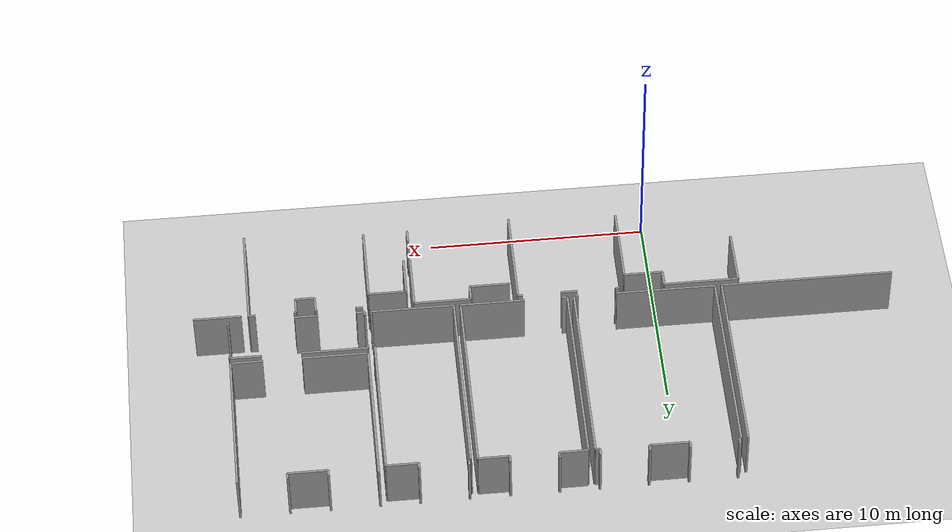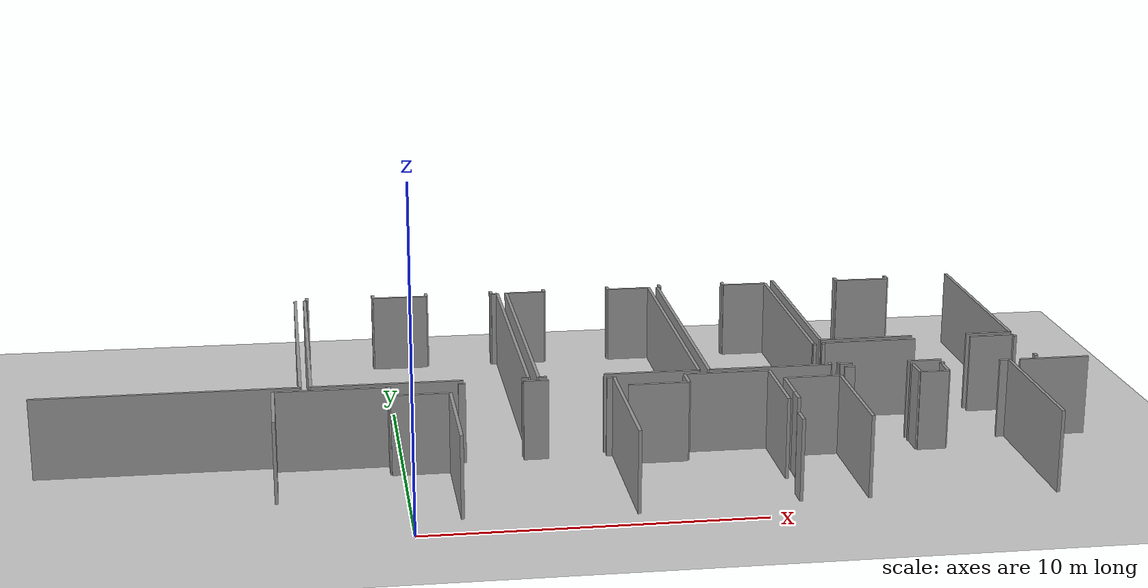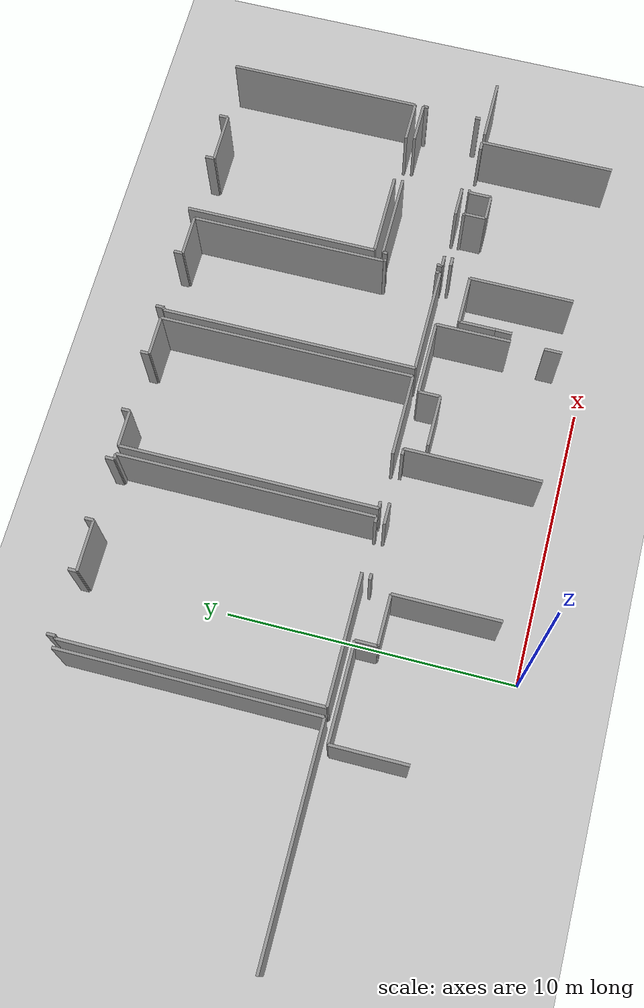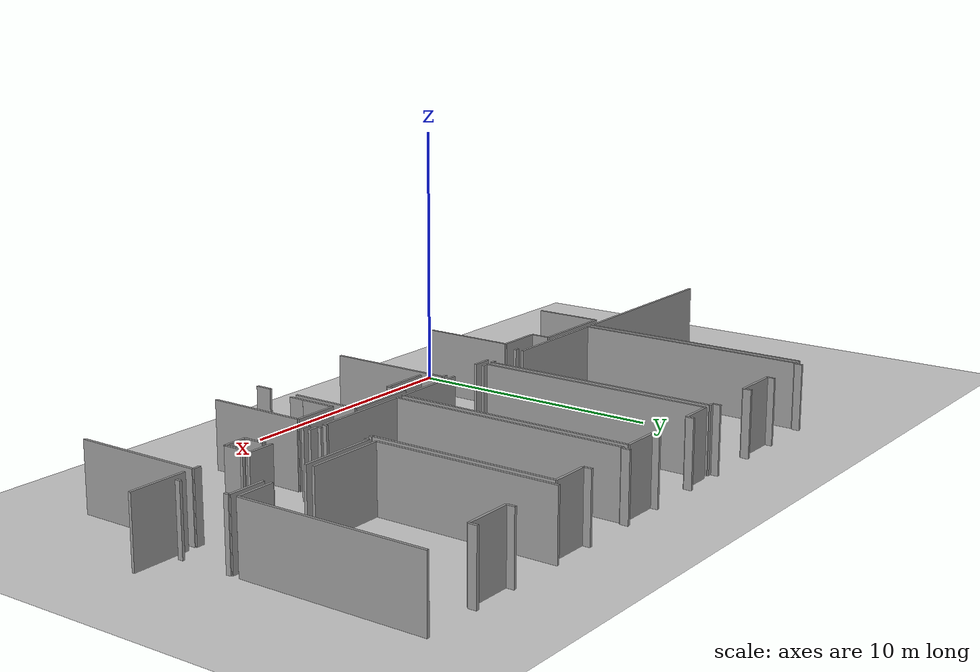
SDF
<sdf version="1.6">
 <world name="default">
  <model name="ground_plane">
   <static>1</static>
   <link name="link">
    <collision name="collision">
     <geometry><plane><normal>0 0 1</normal><size>100 100</size></plane></geometry>
     <surface><friction><ode><mu>100</mu><mu2>50</mu2></ode></friction></surface>
    </collision>
    <visual name="visual">
     <cast_shadows>0</cast_shadows>
     <geometry><plane><normal>0 0 1</normal><size>100 100</size></plane></geometry>
     <material>
      <script><uri>file://media/materials/scripts/gazebo.material</uri><name>Gazebo/Grey</name></script>
     </material>
    </visual>
   </link>
  </model>
  <model name="0510032270_A_40_1_104">
   <static>1</static>
   <link name="Wall_201">
    <collision name="Wall_201_Collision">
     <geometry><box><size>8.98941509842 0.1 2.5</size></box></geometry>
     <pose>4.49470754921 0 1.25 0 0 0</pose>
    </collision>
    <visual name="Wall_201_Visual">
     <pose>4.49470754921 0 1.25 0 0 0</pose>
     <geometry><box><size>8.98941509842 0.1 2.5</size></box></geometry>
     <material>
      <script><uri>file://media/materials/scripts/gazebo.material</uri><name>Gazebo/Grey</name></script>
      <ambient>1 1 1 1</ambient>
     </material>
    </visual>
    <pose>44.8310609045 -0.415898954217 0 0 0 -1.57079632679</pose>
   </link>
   <link name="Wall_202">
    <collision name="Wall_202_Collision">
     <geometry><box><size>7.89636199601 0.1 2.5</size></box></geometry>
     <pose>3.94818099801 0 1.25 0 0 0</pose>
    </collision>
    <visual name="Wall_202_Visual">
     <pose>3.94818099801 0 1.25 0 0 0</pose>
     <geometry><box><size>7.89636199601 0.1 2.5</size></box></geometry>
     <material>
      <script><uri>file://media/materials/scripts/gazebo.material</uri><name>Gazebo/Grey</name></script>
      <ambient>1 1 1 1</ambient>
     </material>
    </visual>
    <pose>44.8310609045 -9.40531405263 0 0 0 3.14159265359</pose>
   </link>
   <link name="Wall_236">
    <collision name="Wall_236_Collision">
     <geometry><box><size>2.62525890441 0.1 2.5</size></box></geometry>
     <pose>1.3126294522 0 1.25 0 0 0</pose>
    </collision>
    <visual name="Wall_236_Visual">
     <pose>1.3126294522 0 1.25 0 0 0</pose>
     <geometry><box><size>2.62525890441 0.1 2.5</size></box></geometry>
     <material>
      <script><uri>file://media/materials/scripts/gazebo.material</uri><name>Gazebo/Grey</name></script>
      <ambient>1 1 1 1</ambient>
     </material>
    </visual>
    <pose>44.0287431541 -12.347611726 0 0 0 1.57079632679</pose>
   </link>
   <link name="Wall_237">
    <collision name="Wall_237_Collision">
     <geometry><box><size>3.41042225244 0.1 2.5</size></box></geometry>
     <pose>1.70521112622 0 1.25 0 0 0</pose>
    </collision>
    <visual name="Wall_237_Visual">
     <pose>1.70521112622 0 1.25 0 0 0</pose>
     <geometry><box><size>3.41042225244 0.1 2.5</size></box></geometry>
     <material>
      <script><uri>file://media/materials/scripts/gazebo.material</uri><name>Gazebo/Grey</name></script>
      <ambient>1 1 1 1</ambient>
     </material>
    </visual>
    <pose>44.0287431541 -9.72235282158 0 0 0 0.0</pose>
   </link>
   <link name="Wall_238">
    <collision name="Wall_238_Collision">
     <geometry><box><size>0.75593732925 0.1 2.5</size></box></geometry>
     <pose>0.377968664625 0 1.25 0 0 0</pose>
    </collision>
    <visual name="Wall_238_Visual">
     <pose>0.377968664625 0 1.25 0 0 0</pose>
     <geometry><box><size>0.75593732925 0.1 2.5</size></box></geometry>
     <material>
      <script><uri>file://media/materials/scripts/gazebo.material</uri><name>Gazebo/Grey</name></script>
      <ambient>1 1 1 1</ambient>
     </material>
    </visual>
    <pose>47.4391654066 -9.72235282158 0 0 0 -1.57079632679</pose>
   </link>
   <link name="Wall_239">
    <collision name="Wall_239_Collision">
     <geometry><box><size>1.76664930048 0.1 2.5</size></box></geometry>
     <pose>0.883324650241 0 1.25 0 0 0</pose>
    </collision>
    <visual name="Wall_239_Visual">
     <pose>0.883324650241 0 1.25 0 0 0</pose>
     <geometry><box><size>1.76664930048 0.1 2.5</size></box></geometry>
     <material>
      <script><uri>file://media/materials/scripts/gazebo.material</uri><name>Gazebo/Grey</name></script>
      <ambient>1 1 1 1</ambient>
     </material>
    </visual>
    <pose>47.4391654066 -10.4782901508 0 0 0 0.0</pose>
   </link>
   <link name="Wall_240">
    <collision name="Wall_240_Collision">
     <geometry><box><size>3.69899742049 0.1 2.5</size></box></geometry>
     <pose>1.84949871024 0 1.25 0 0 0</pose>
    </collision>
    <visual name="Wall_240_Visual">
     <pose>1.84949871024 0 1.25 0 0 0</pose>
     <geometry><box><size>3.69899742049 0.1 2.5</size></box></geometry>
     <material>
      <script><uri>file://media/materials/scripts/gazebo.material</uri><name>Gazebo/Grey</name></script>
      <ambient>1 1 1 1</ambient>
     </material>
    </visual>
    <pose>49.205814707 -10.4782901508 0 0 0 -1.57079632679</pose>
   </link>
   <link name="Wall_425">
    <collision name="Wall_425_Collision">
     <geometry><box><size>8.99843704334 0.1 2.5</size></box></geometry>
     <pose>4.49921852167 0 1.25 0 0 0</pose>
    </collision>
    <visual name="Wall_425_Visual">
     <pose>4.49921852167 0 1.25 0 0 0</pose>
     <geometry><box><size>8.99843704334 0.1 2.5</size></box></geometry>
     <material>
      <script><uri>file://media/materials/scripts/gazebo.material</uri><name>Gazebo/Grey</name></script>
      <ambient>1 1 1 1</ambient>
     </material>
    </visual>
    <pose>45.1407296339 -9.40086661499 0 0 0 1.57079632679</pose>
   </link>
   <link name="Wall_426">
    <collision name="Wall_426_Collision">
     <geometry><box><size>0.0828494097615 0.1 2.5</size></box></geometry>
     <pose>0.0414247048807 0 1.25 0 0 0</pose>
    </collision>
    <visual name="Wall_426_Visual">
     <pose>0.0414247048807 0 1.25 0 0 0</pose>
     <geometry><box><size>0.0828494097615 0.1 2.5</size></box></geometry>
     <material>
      <script><uri>file://media/materials/scripts/gazebo.material</uri><name>Gazebo/Grey</name></script>
      <ambient>1 1 1 1</ambient>
     </material>
    </visual>
    <pose>45.1407296339 -0.402429571648 0 0 0 0.0</pose>
   </link>
   <link name="Wall_427">
    <collision name="Wall_427_Collision">
     <geometry><box><size>0.2906082824 0.1 2.5</size></box></geometry>
     <pose>0.1453041412 0 1.25 0 0 0</pose>
    </collision>
    <visual name="Wall_427_Visual">
     <pose>0.1453041412 0 1.25 0 0 0</pose>
     <geometry><box><size>0.2906082824 0.1 2.5</size></box></geometry>
     <material>
      <script><uri>file://media/materials/scripts/gazebo.material</uri><name>Gazebo/Grey</name></script>
      <ambient>1 1 1 1</ambient>
     </material>
    </visual>
    <pose>45.2235790437 -0.402429571648 0 0 0 1.57079632679</pose>
   </link>
   <link name="Wall_428">
    <collision name="Wall_428_Collision">
     <geometry><box><size>0.297978321918 0.1 2.5</size></box></geometry>
     <pose>0.148989160959 0 1.25 0 0 0</pose>
    </collision>
    <visual name="Wall_428_Visual">
     <pose>0.148989160959 0 1.25 0 0 0</pose>
     <geometry><box><size>0.297978321918 0.1 2.5</size></box></geometry>
     <material>
      <script><uri>file://media/materials/scripts/gazebo.material</uri><name>Gazebo/Grey</name></script>
      <ambient>1 1 1 1</ambient>
     </material>
    </visual>
    <pose>47.4335743421 -0.111821289249 0 0 0 -1.57079632679</pose>
   </link>
   <link name="Wall_429">
    <collision name="Wall_429_Collision">
     <geometry><box><size>1.79130081198 0.1 2.5</size></box></geometry>
     <pose>0.895650405988 0 1.25 0 0 0</pose>
    </collision>
    <visual name="Wall_429_Visual">
     <pose>0.895650405988 0 1.25 0 0 0</pose>
     <geometry><box><size>1.79130081198 0.1 2.5</size></box></geometry>
     <material>
      <script><uri>file://media/materials/scripts/gazebo.material</uri><name>Gazebo/Grey</name></script>
      <ambient>1 1 1 1</ambient>
     </material>
    </visual>
    <pose>47.4335743421 -0.409799611167 0 0 0 0.0</pose>
   </link>
   <link name="Wall_430">
    <collision name="Wall_430_Collision">
     <geometry><box><size>0.305729570378 0.1 2.5</size></box></geometry>
     <pose>0.152864785189 0 1.25 0 0 0</pose>
    </collision>
    <visual name="Wall_430_Visual">
     <pose>0.152864785189 0 1.25 0 0 0</pose>
     <geometry><box><size>0.305729570378 0.1 2.5</size></box></geometry>
     <material>
      <script><uri>file://media/materials/scripts/gazebo.material</uri><name>Gazebo/Grey</name></script>
      <ambient>1 1 1 1</ambient>
     </material>
    </visual>
    <pose>49.2248751541 -0.409799611167 0 0 0 1.57079632679</pose>
   </link>
   <link name="Wall_431">
    <collision name="Wall_431_Collision">
     <geometry><box><size>0.313480818837 0.1 2.5</size></box></geometry>
     <pose>0.156740409418 0 1.25 0 0 0</pose>
    </collision>
    <visual name="Wall_431_Visual">
     <pose>0.156740409418 0 1.25 0 0 0</pose>
     <geometry><box><size>0.313480818837 0.1 2.5</size></box></geometry>
     <material>
      <script><uri>file://media/materials/scripts/gazebo.material</uri><name>Gazebo/Grey</name></script>
      <ambient>1 1 1 1</ambient>
     </material>
    </visual>
    <pose>51.4352516614 -0.104070040789 0 0 0 -1.57079632679</pose>
   </link>
   <link name="Wall_432">
    <collision name="Wall_432_Collision">
     <geometry><box><size>0.203438504644 0.1 2.5</size></box></geometry>
     <pose>0.101719252322 0 1.25 0 0 0</pose>
    </collision>
    <visual name="Wall_432_Visual">
     <pose>0.101719252322 0 1.25 0 0 0</pose>
     <geometry><box><size>0.203438504644 0.1 2.5</size></box></geometry>
     <material>
      <script><uri>file://media/materials/scripts/gazebo.material</uri><name>Gazebo/Grey</name></script>
      <ambient>1 1 1 1</ambient>
     </material>
    </visual>
    <pose>51.4352516614 -0.417550859626 0 0 0 0.0</pose>
   </link>
   <link name="Wall_433">
    <collision name="Wall_433_Collision">
     <geometry><box><size>8.98128264102 0.1 2.5</size></box></geometry>
     <pose>4.49064132051 0 1.25 0 0 0</pose>
    </collision>
    <visual name="Wall_433_Visual">
     <pose>4.49064132051 0 1.25 0 0 0</pose>
     <geometry><box><size>8.98128264102 0.1 2.5</size></box></geometry>
     <material>
      <script><uri>file://media/materials/scripts/gazebo.material</uri><name>Gazebo/Grey</name></script>
      <ambient>1 1 1 1</ambient>
     </material>
    </visual>
    <pose>51.6386901661 -0.417550859626 0 0 0 -1.57079632679</pose>
   </link>
   <link name="Wall_434">
    <collision name="Wall_434_Collision">
     <geometry><box><size>0.205217479701 0.1 2.5</size></box></geometry>
     <pose>0.10260873985 0 1.25 0 0 0</pose>
    </collision>
    <visual name="Wall_434_Visual">
     <pose>0.10260873985 0 1.25 0 0 0</pose>
     <geometry><box><size>0.205217479701 0.1 2.5</size></box></geometry>
     <material>
      <script><uri>file://media/materials/scripts/gazebo.material</uri><name>Gazebo/Grey</name></script>
      <ambient>1 1 1 1</ambient>
     </material>
    </visual>
    <pose>51.6386901661 -9.39883350064 0 0 0 3.14159265359</pose>
   </link>
   <link name="Wall_435">
    <collision name="Wall_435_Collision">
     <geometry><box><size>4.53613270971 0.1 2.5</size></box></geometry>
     <pose>2.26806635486 0 1.25 0 0 0</pose>
    </collision>
    <visual name="Wall_435_Visual">
     <pose>2.26806635486 0 1.25 0 0 0</pose>
     <geometry><box><size>4.53613270971 0.1 2.5</size></box></geometry>
     <material>
      <script><uri>file://media/materials/scripts/gazebo.material</uri><name>Gazebo/Grey</name></script>
      <ambient>1 1 1 1</ambient>
     </material>
    </visual>
    <pose>49.676861888 -9.39883350064 0 0 0 -3.14114444924</pose>
   </link>
   <link name="Wall_436">
    <collision name="Wall_436_Collision">
     <geometry><box><size>9.00008894875 0.1 2.5</size></box></geometry>
     <pose>4.50004447438 0 1.25 0 0 0</pose>
    </collision>
    <visual name="Wall_436_Visual">
     <pose>4.50004447438 0 1.25 0 0 0</pose>
     <geometry><box><size>9.00008894875 0.1 2.5</size></box></geometry>
     <material>
      <script><uri>file://media/materials/scripts/gazebo.material</uri><name>Gazebo/Grey</name></script>
      <ambient>1 1 1 1</ambient>
     </material>
    </visual>
    <pose>51.9420054132 -9.4025185204 0 0 0 1.57079632679</pose>
   </link>
   <link name="Wall_437">
    <collision name="Wall_437_Collision">
     <geometry><box><size>1.29509384093 0.1 2.5</size></box></geometry>
     <pose>0.647546920467 0 1.25 0 0 0</pose>
    </collision>
    <visual name="Wall_437_Visual">
     <pose>0.647546920467 0 1.25 0 0 0</pose>
     <geometry><box><size>1.29509384093 0.1 2.5</size></box></geometry>
     <material>
      <script><uri>file://media/materials/scripts/gazebo.material</uri><name>Gazebo/Grey</name></script>
      <ambient>1 1 1 1</ambient>
     </material>
    </visual>
    <pose>51.9420054132 -0.402429571648 0 0 0 0.0</pose>
   </link>
   <link name="Wall_438">
    <collision name="Wall_438_Collision">
     <geometry><box><size>0.2906082824 0.1 2.5</size></box></geometry>
     <pose>0.1453041412 0 1.25 0 0 0</pose>
    </collision>
    <visual name="Wall_438_Visual">
     <pose>0.1453041412 0 1.25 0 0 0</pose>
     <geometry><box><size>0.2906082824 0.1 2.5</size></box></geometry>
     <material>
      <script><uri>file://media/materials/scripts/gazebo.material</uri><name>Gazebo/Grey</name></script>
      <ambient>1 1 1 1</ambient>
     </material>
    </visual>
    <pose>53.2370992541 -0.402429571648 0 0 0 1.57079632679</pose>
   </link>
   <link name="Wall_439">
    <collision name="Wall_439_Collision">
     <geometry><box><size>0.304077664968 0.1 2.5</size></box></geometry>
     <pose>0.152038832484 0 1.25 0 0 0</pose>
    </collision>
    <visual name="Wall_439_Visual">
     <pose>0.152038832484 0 1.25 0 0 0</pose>
     <geometry><box><size>0.304077664968 0.1 2.5</size></box></geometry>
     <material>
      <script><uri>file://media/materials/scripts/gazebo.material</uri><name>Gazebo/Grey</name></script>
      <ambient>1 1 1 1</ambient>
     </material>
    </visual>
    <pose>55.4350229361 -0.111821289249 0 0 0 -1.57079632679</pose>
   </link>
   <link name="Wall_440">
    <collision name="Wall_440_Collision">
     <geometry><box><size>1.410218941 0.1 2.5</size></box></geometry>
     <pose>0.705109470501 0 1.25 0 0 0</pose>
    </collision>
    <visual name="Wall_440_Visual">
     <pose>0.705109470501 0 1.25 0 0 0</pose>
     <geometry><box><size>1.410218941 0.1 2.5</size></box></geometry>
     <material>
      <script><uri>file://media/materials/scripts/gazebo.material</uri><name>Gazebo/Grey</name></script>
      <ambient>1 1 1 1</ambient>
     </material>
    </visual>
    <pose>55.4350229361 -0.415898954217 0 0 0 0.0</pose>
   </link>
   <link name="Wall_441">
    <collision name="Wall_441_Collision">
     <geometry><box><size>8.97810589984 0.1 2.5</size></box></geometry>
     <pose>4.48905294992 0 1.25 0 0 0</pose>
    </collision>
    <visual name="Wall_441_Visual">
     <pose>4.48905294992 0 1.25 0 0 0</pose>
     <geometry><box><size>8.97810589984 0.1 2.5</size></box></geometry>
     <material>
      <script><uri>file://media/materials/scripts/gazebo.material</uri><name>Gazebo/Grey</name></script>
      <ambient>1 1 1 1</ambient>
     </material>
    </visual>
    <pose>56.8452418771 -0.415898954217 0 0 0 -1.57079632679</pose>
   </link>
   <link name="Wall_442">
    <collision name="Wall_442_Collision">
     <geometry><box><size>2.92387257456 0.1 2.5</size></box></geometry>
     <pose>1.46193628728 0 1.25 0 0 0</pose>
    </collision>
    <visual name="Wall_442_Visual">
     <pose>1.46193628728 0 1.25 0 0 0</pose>
     <geometry><box><size>2.92387257456 0.1 2.5</size></box></geometry>
     <material>
      <script><uri>file://media/materials/scripts/gazebo.material</uri><name>Gazebo/Grey</name></script>
      <ambient>1 1 1 1</ambient>
     </material>
    </visual>
    <pose>56.8452418771 -9.39400485406 0 0 0 3.14159265359</pose>
   </link>
   <link name="Wall_443">
    <collision name="Wall_443_Collision">
     <geometry><box><size>0.250090949718 0.1 2.5</size></box></geometry>
     <pose>0.125045474859 0 1.25 0 0 0</pose>
    </collision>
    <visual name="Wall_443_Visual">
     <pose>0.125045474859 0 1.25 0 0 0</pose>
     <geometry><box><size>0.250090949718 0.1 2.5</size></box></geometry>
     <material>
      <script><uri>file://media/materials/scripts/gazebo.material</uri><name>Gazebo/Grey</name></script>
      <ambient>1 1 1 1</ambient>
     </material>
    </visual>
    <pose>52.1919514086 -9.39400485406 0 0 0 -3.1075437942</pose>
   </link>
   <link name="Wall_444">
    <collision name="Wall_444_Collision">
     <geometry><box><size>8.98750905371 0.1 2.5</size></box></geometry>
     <pose>4.49375452686 0 1.25 0 0 0</pose>
    </collision>
    <visual name="Wall_444_Visual">
     <pose>4.49375452686 0 1.25 0 0 0</pose>
     <geometry><box><size>8.98750905371 0.1 2.5</size></box></geometry>
     <material>
      <script><uri>file://media/materials/scripts/gazebo.material</uri><name>Gazebo/Grey</name></script>
      <ambient>1 1 1 1</ambient>
     </material>
    </visual>
    <pose>57.1571978601 -9.39946884888 0 0 0 1.57079632679</pose>
   </link>
   <link name="Wall_445">
    <collision name="Wall_445_Collision">
     <geometry><box><size>0.0878051259896 0.1 2.5</size></box></geometry>
     <pose>0.0439025629948 0 1.25 0 0 0</pose>
    </collision>
    <visual name="Wall_445_Visual">
     <pose>0.0439025629948 0 1.25 0 0 0</pose>
     <geometry><box><size>0.0878051259896 0.1 2.5</size></box></geometry>
     <material>
      <script><uri>file://media/materials/scripts/gazebo.material</uri><name>Gazebo/Grey</name></script>
      <ambient>1 1 1 1</ambient>
     </material>
    </visual>
    <pose>57.1571978601 -0.411959795164 0 0 0 0.0</pose>
   </link>
   <link name="Wall_446">
    <collision name="Wall_446_Collision">
     <geometry><box><size>0.307635615081 0.1 2.5</size></box></geometry>
     <pose>0.15381780754 0 1.25 0 0 0</pose>
    </collision>
    <visual name="Wall_446_Visual">
     <pose>0.15381780754 0 1.25 0 0 0</pose>
     <geometry><box><size>0.307635615081 0.1 2.5</size></box></geometry>
     <material>
      <script><uri>file://media/materials/scripts/gazebo.material</uri><name>Gazebo/Grey</name></script>
      <ambient>1 1 1 1</ambient>
     </material>
    </visual>
    <pose>57.2450029861 -0.411959795164 0 0 0 1.57079632679</pose>
   </link>
   <link name="Wall_447">
    <collision name="Wall_447_Collision">
     <geometry><box><size>0.316149281421 0.1 2.5</size></box></geometry>
     <pose>0.158074640711 0 1.25 0 0 0</pose>
    </collision>
    <visual name="Wall_447_Visual">
     <pose>0.158074640711 0 1.25 0 0 0</pose>
     <geometry><box><size>0.316149281421 0.1 2.5</size></box></geometry>
     <material>
      <script><uri>file://media/materials/scripts/gazebo.material</uri><name>Gazebo/Grey</name></script>
      <ambient>1 1 1 1</ambient>
     </material>
    </visual>
    <pose>59.4486448022 -0.104324180083 0 0 0 -1.57079632679</pose>
   </link>
   <link name="Wall_448">
    <collision name="Wall_448_Collision">
     <geometry><box><size>1.46295284445 0.1 2.5</size></box></geometry>
     <pose>0.731476422227 0 1.25 0 0 0</pose>
    </collision>
    <visual name="Wall_448_Visual">
     <pose>0.731476422227 0 1.25 0 0 0</pose>
     <geometry><box><size>1.46295284445 0.1 2.5</size></box></geometry>
     <material>
      <script><uri>file://media/materials/scripts/gazebo.material</uri><name>Gazebo/Grey</name></script>
      <ambient>1 1 1 1</ambient>
     </material>
    </visual>
    <pose>59.4486448022 -0.420473461504 0 0 0 0.0</pose>
   </link>
   <link name="Wall_449">
    <collision name="Wall_449_Collision">
     <geometry><box><size>6.93698616212 0.1 2.5</size></box></geometry>
     <pose>3.46849308106 0 1.25 0 0 0</pose>
    </collision>
    <visual name="Wall_449_Visual">
     <pose>3.46849308106 0 1.25 0 0 0</pose>
     <geometry><box><size>6.93698616212 0.1 2.5</size></box></geometry>
     <material>
      <script><uri>file://media/materials/scripts/gazebo.material</uri><name>Gazebo/Grey</name></script>
      <ambient>1 1 1 1</ambient>
     </material>
    </visual>
    <pose>60.9115976467 -0.420473461504 0 0 0 -1.57079632679</pose>
   </link>
   <link name="Wall_450">
    <collision name="Wall_450_Collision">
     <geometry><box><size>0.0232537453778 0.1 2.5</size></box></geometry>
     <pose>0.0116268726889 0 1.25 0 0 0</pose>
    </collision>
    <visual name="Wall_450_Visual">
     <pose>0.0116268726889 0 1.25 0 0 0</pose>
     <geometry><box><size>0.0232537453778 0.1 2.5</size></box></geometry>
     <material>
      <script><uri>file://media/materials/scripts/gazebo.material</uri><name>Gazebo/Grey</name></script>
      <ambient>1 1 1 1</ambient>
     </material>
    </visual>
    <pose>60.9115976467 -7.35745962362 0 0 0 0.0</pose>
   </link>
   <link name="Wall_451">
    <collision name="Wall_451_Collision">
     <geometry><box><size>0.103688831849 0.1 2.5</size></box></geometry>
     <pose>0.0518444159244 0 1.25 0 0 0</pose>
    </collision>
    <visual name="Wall_451_Visual">
     <pose>0.0518444159244 0 1.25 0 0 0</pose>
     <geometry><box><size>0.103688831849 0.1 2.5</size></box></geometry>
     <material>
      <script><uri>file://media/materials/scripts/gazebo.material</uri><name>Gazebo/Grey</name></script>
      <ambient>1 1 1 1</ambient>
     </material>
    </visual>
    <pose>60.934851392 -7.35745962362 0 0 0 -1.57079632679</pose>
   </link>
   <link name="Wall_452">
    <collision name="Wall_452_Collision">
     <geometry><box><size>0.166080028464 0.1 2.5</size></box></geometry>
     <pose>0.0830400142318 0 1.25 0 0 0</pose>
    </collision>
    <visual name="Wall_452_Visual">
     <pose>0.0830400142318 0 1.25 0 0 0</pose>
     <geometry><box><size>0.166080028464 0.1 2.5</size></box></geometry>
     <material>
      <script><uri>file://media/materials/scripts/gazebo.material</uri><name>Gazebo/Grey</name></script>
      <ambient>1 1 1 1</ambient>
     </material>
    </visual>
    <pose>60.934851392 -9.24050472064 0 0 0 -1.57079632679</pose>
   </link>
   <link name="Wall_453">
    <collision name="Wall_453_Collision">
     <geometry><box><size>3.77766023394 0.1 2.5</size></box></geometry>
     <pose>1.88883011697 0 1.25 0 0 0</pose>
    </collision>
    <visual name="Wall_453_Visual">
     <pose>1.88883011697 0 1.25 0 0 0</pose>
     <geometry><box><size>3.77766023394 0.1 2.5</size></box></geometry>
     <material>
      <script><uri>file://media/materials/scripts/gazebo.material</uri><name>Gazebo/Grey</name></script>
      <ambient>1 1 1 1</ambient>
     </material>
    </visual>
    <pose>60.934851392 -9.4065847491 0 0 0 3.13970897322</pose>
   </link>
   <link name="Wall_454">
    <collision name="Wall_454_Collision">
     <geometry><box><size>6.85146828977 0.1 2.5</size></box></geometry>
     <pose>3.42573414488 0 1.25 0 0 0</pose>
    </collision>
    <visual name="Wall_454_Visual">
     <pose>3.42573414488 0 1.25 0 0 0</pose>
     <geometry><box><size>6.85146828977 0.1 2.5</size></box></geometry>
     <material>
      <script><uri>file://media/materials/scripts/gazebo.material</uri><name>Gazebo/Grey</name></script>
      <ambient>1 1 1 1</ambient>
     </material>
    </visual>
    <pose>61.2343545497 -6.95579246985 0 0 0 1.57079632679</pose>
   </link>
   <link name="Wall_455">
    <collision name="Wall_455_Collision">
     <geometry><box><size>0.318690674359 0.1 2.5</size></box></geometry>
     <pose>0.159345337179 0 1.25 0 0 0</pose>
    </collision>
    <visual name="Wall_455_Visual">
     <pose>0.159345337179 0 1.25 0 0 0</pose>
     <geometry><box><size>0.318690674359 0.1 2.5</size></box></geometry>
     <material>
      <script><uri>file://media/materials/scripts/gazebo.material</uri><name>Gazebo/Grey</name></script>
      <ambient>1 1 1 1</ambient>
     </material>
    </visual>
    <pose>63.4418084552 -0.104324180083 0 0 0 -1.57079632679</pose>
   </link>
   <link name="Wall_456">
    <collision name="Wall_456_Collision">
     <geometry><box><size>1.79638359785 0.1 2.5</size></box></geometry>
     <pose>0.898191798925 0 1.25 0 0 0</pose>
    </collision>
    <visual name="Wall_456_Visual">
     <pose>0.898191798925 0 1.25 0 0 0</pose>
     <geometry><box><size>1.79638359785 0.1 2.5</size></box></geometry>
     <material>
      <script><uri>file://media/materials/scripts/gazebo.material</uri><name>Gazebo/Grey</name></script>
      <ambient>1 1 1 1</ambient>
     </material>
    </visual>
    <pose>63.4418084552 -0.423014854442 0 0 0 0.0</pose>
   </link>
   <link name="Wall_457">
    <collision name="Wall_457_Collision">
     <geometry><box><size>0.318690674359 0.1 2.5</size></box></geometry>
     <pose>0.159345337179 0 1.25 0 0 0</pose>
    </collision>
    <visual name="Wall_457_Visual">
     <pose>0.159345337179 0 1.25 0 0 0</pose>
     <geometry><box><size>0.318690674359 0.1 2.5</size></box></geometry>
     <material>
      <script><uri>file://media/materials/scripts/gazebo.material</uri><name>Gazebo/Grey</name></script>
      <ambient>1 1 1 1</ambient>
     </material>
    </visual>
    <pose>65.2381920531 -0.423014854442 0 0 0 1.57079632679</pose>
   </link>
   <link name="Wall_458">
    <collision name="Wall_458_Collision">
     <geometry><box><size>6.85134122012 0.1 2.5</size></box></geometry>
     <pose>3.42567061006 0 1.25 0 0 0</pose>
    </collision>
    <visual name="Wall_458_Visual">
     <pose>3.42567061006 0 1.25 0 0 0</pose>
     <geometry><box><size>6.85134122012 0.1 2.5</size></box></geometry>
     <material>
      <script><uri>file://media/materials/scripts/gazebo.material</uri><name>Gazebo/Grey</name></script>
      <ambient>1 1 1 1</ambient>
     </material>
    </visual>
    <pose>67.4540325552 -0.104324180083 0 0 0 -1.57079632679</pose>
   </link>
   <link name="Wall_459">
    <collision name="Wall_459_Collision">
     <geometry><box><size>1.45914075505 0.1 2.5</size></box></geometry>
     <pose>0.729570377524 0 1.25 0 0 0</pose>
    </collision>
    <visual name="Wall_459_Visual">
     <pose>0.729570377524 0 1.25 0 0 0</pose>
     <geometry><box><size>1.45914075505 0.1 2.5</size></box></geometry>
     <material>
      <script><uri>file://media/materials/scripts/gazebo.material</uri><name>Gazebo/Grey</name></script>
      <ambient>1 1 1 1</ambient>
     </material>
    </visual>
    <pose>67.4540325552 -6.95566540021 0 0 0 3.14159265359</pose>
   </link>
   <link name="Wall_460">
    <collision name="Wall_460_Collision">
     <geometry><box><size>2.98207047553 0.1 2.5</size></box></geometry>
     <pose>1.49103523777 0 1.25 0 0 0</pose>
    </collision>
    <visual name="Wall_460_Visual">
     <pose>1.49103523777 0 1.25 0 0 0</pose>
     <geometry><box><size>2.98207047553 0.1 2.5</size></box></geometry>
     <material>
      <script><uri>file://media/materials/scripts/gazebo.material</uri><name>Gazebo/Grey</name></script>
      <ambient>1 1 1 1</ambient>
     </material>
    </visual>
    <pose>64.2164250226 -6.95566540021 0 0 0 -3.14155004237</pose>
   </link>
   <link name="Wall_461">
    <collision name="Wall_461_Collision">
     <geometry><box><size>3.00036850198 0.1 2.5</size></box></geometry>
     <pose>1.50018425099 0 1.25 0 0 0</pose>
    </collision>
    <visual name="Wall_461_Visual">
     <pose>1.50018425099 0 1.25 0 0 0</pose>
     <geometry><box><size>3.00036850198 0.1 2.5</size></box></geometry>
     <material>
      <script><uri>file://media/materials/scripts/gazebo.material</uri><name>Gazebo/Grey</name></script>
      <ambient>1 1 1 1</ambient>
     </material>
    </visual>
    <pose>61.2343545497 -7.26317394564 0 0 0 0.0</pose>
   </link>
   <link name="Wall_462">
    <collision name="Wall_462_Collision">
     <geometry><box><size>1.43220198991 0.1 2.5</size></box></geometry>
     <pose>0.716100994955 0 1.25 0 0 0</pose>
    </collision>
    <visual name="Wall_462_Visual">
     <pose>0.716100994955 0 1.25 0 0 0</pose>
     <geometry><box><size>1.43220198991 0.1 2.5</size></box></geometry>
     <material>
      <script><uri>file://media/materials/scripts/gazebo.material</uri><name>Gazebo/Grey</name></script>
      <ambient>1 1 1 1</ambient>
     </material>
    </visual>
    <pose>66.0358082265 -7.26317394564 0 0 0 0.0</pose>
   </link>
   <link name="Wall_463">
    <collision name="Wall_463_Collision">
     <geometry><box><size>0.185267545141 0.1 2.5</size></box></geometry>
     <pose>0.0926337725707 0 1.25 0 0 0</pose>
    </collision>
    <visual name="Wall_463_Visual">
     <pose>0.0926337725707 0 1.25 0 0 0</pose>
     <geometry><box><size>0.185267545141 0.1 2.5</size></box></geometry>
     <material>
      <script><uri>file://media/materials/scripts/gazebo.material</uri><name>Gazebo/Grey</name></script>
      <ambient>1 1 1 1</ambient>
     </material>
    </visual>
    <pose>67.4680102164 -7.26317394564 0 0 0 -1.57079632679</pose>
   </link>
   <link name="Wall_464">
    <collision name="Wall_464_Collision">
     <geometry><box><size>0.182726152204 0.1 2.5</size></box></geometry>
     <pose>0.091363076102 0 1.25 0 0 0</pose>
    </collision>
    <visual name="Wall_464_Visual">
     <pose>0.091363076102 0 1.25 0 0 0</pose>
     <geometry><box><size>0.182726152204 0.1 2.5</size></box></geometry>
     <material>
      <script><uri>file://media/materials/scripts/gazebo.material</uri><name>Gazebo/Grey</name></script>
      <ambient>1 1 1 1</ambient>
     </material>
    </visual>
    <pose>67.4680102164 -9.2238585969 0 0 0 -1.57079632679</pose>
   </link>
   <link name="Wall_466">
    <collision name="Wall_466_Collision">
     <geometry><box><size>1.06763917303 0.1 2.5</size></box></geometry>
     <pose>0.533819586515 0 1.25 0 0 0</pose>
    </collision>
    <visual name="Wall_466_Visual">
     <pose>0.533819586515 0 1.25 0 0 0</pose>
     <geometry><box><size>1.06763917303 0.1 2.5</size></box></geometry>
     <material>
      <script><uri>file://media/materials/scripts/gazebo.material</uri><name>Gazebo/Grey</name></script>
      <ambient>1 1 1 1</ambient>
     </material>
    </visual>
    <pose>64.4283771935 -9.4065847491 0 0 0 3.14159265359</pose>
   </link>
   <link name="Wall_467">
    <collision name="Wall_467_Collision">
     <geometry><box><size>0.391755721311 0.1 2.5</size></box></geometry>
     <pose>0.195877860655 0 1.25 0 0 0</pose>
    </collision>
    <visual name="Wall_467_Visual">
     <pose>0.195877860655 0 1.25 0 0 0</pose>
     <geometry><box><size>0.391755721311 0.1 2.5</size></box></geometry>
     <material>
      <script><uri>file://media/materials/scripts/gazebo.material</uri><name>Gazebo/Grey</name></script>
      <ambient>1 1 1 1</ambient>
     </material>
    </visual>
    <pose>61.6117514009 -9.4065847491 0 0 0 3.14159265359</pose>
   </link>
   <link name="Wall_468">
    <collision name="Wall_468_Collision">
     <geometry><box><size>0.183107361145 0.1 2.5</size></box></geometry>
     <pose>0.0915536805723 0 1.25 0 0 0</pose>
    </collision>
    <visual name="Wall_468_Visual">
     <pose>0.0915536805723 0 1.25 0 0 0</pose>
     <geometry><box><size>0.183107361145 0.1 2.5</size></box></geometry>
     <material>
      <script><uri>file://media/materials/scripts/gazebo.material</uri><name>Gazebo/Grey</name></script>
      <ambient>1 1 1 1</ambient>
     </material>
    </visual>
    <pose>61.2199956796 -9.4065847491 0 0 0 1.57079632679</pose>
   </link>
   <link name="Wall_469">
    <collision name="Wall_469_Collision">
     <geometry><box><size>0.165307061805 0.1 2.5</size></box></geometry>
     <pose>0.0826535309024 0 1.25 0 0 0</pose>
    </collision>
    <visual name="Wall_469_Visual">
     <pose>0.0826535309024 0 1.25 0 0 0</pose>
     <geometry><box><size>0.165307061805 0.1 2.5</size></box></geometry>
     <material>
      <script><uri>file://media/materials/scripts/gazebo.material</uri><name>Gazebo/Grey</name></script>
      <ambient>1 1 1 1</ambient>
     </material>
    </visual>
    <pose>61.2199956796 -7.42785620799 0 0 0 1.48382491893</pose>
   </link>
   <link name="Wall_480">
    <collision name="Wall_480_Collision">
     <geometry><box><size>1.83475863121 0.1 2.5</size></box></geometry>
     <pose>0.917379315603 0 1.25 0 0 0</pose>
    </collision>
    <visual name="Wall_480_Visual">
     <pose>0.917379315603 0 1.25 0 0 0</pose>
     <geometry><box><size>1.83475863121 0.1 2.5</size></box></geometry>
     <material>
      <script><uri>file://media/materials/scripts/gazebo.material</uri><name>Gazebo/Grey</name></script>
      <ambient>1 1 1 1</ambient>
     </material>
    </visual>
    <pose>54.5038565638 -10.4652019772 0 0 0 0.0</pose>
   </link>
   <link name="Wall_481">
    <collision name="Wall_481_Collision">
     <geometry><box><size>0.752633518431 0.1 2.5</size></box></geometry>
     <pose>0.376316759216 0 1.25 0 0 0</pose>
    </collision>
    <visual name="Wall_481_Visual">
     <pose>0.376316759216 0 1.25 0 0 0</pose>
     <geometry><box><size>0.752633518431 0.1 2.5</size></box></geometry>
     <material>
      <script><uri>file://media/materials/scripts/gazebo.material</uri><name>Gazebo/Grey</name></script>
      <ambient>1 1 1 1</ambient>
     </material>
    </visual>
    <pose>56.338615195 -10.4652019772 0 0 0 1.57079632679</pose>
   </link>
   <link name="Wall_482">
    <collision name="Wall_482_Collision">
     <geometry><box><size>2.60937519855 0.1 2.5</size></box></geometry>
     <pose>1.30468759927 0 1.25 0 0 0</pose>
    </collision>
    <visual name="Wall_482_Visual">
     <pose>1.30468759927 0 1.25 0 0 0</pose>
     <geometry><box><size>2.60937519855 0.1 2.5</size></box></geometry>
     <material>
      <script><uri>file://media/materials/scripts/gazebo.material</uri><name>Gazebo/Grey</name></script>
      <ambient>1 1 1 1</ambient>
     </material>
    </visual>
    <pose>56.338615195 -9.71256845877 0 0 0 0.0</pose>
   </link>
   <link name="Wall_483">
    <collision name="Wall_483_Collision">
     <geometry><box><size>2.64241330673 0.1 2.5</size></box></geometry>
     <pose>1.32120665337 0 1.25 0 0 0</pose>
    </collision>
    <visual name="Wall_483_Visual">
     <pose>1.32120665337 0 1.25 0 0 0</pose>
     <geometry><box><size>2.64241330673 0.1 2.5</size></box></geometry>
     <material>
      <script><uri>file://media/materials/scripts/gazebo.material</uri><name>Gazebo/Grey</name></script>
      <ambient>1 1 1 1</ambient>
     </material>
    </visual>
    <pose>58.9479903935 -9.71256845877 0 0 0 -1.57079632679</pose>
   </link>
   <link name="Wall_484">
    <collision name="Wall_484_Collision">
     <geometry><box><size>0.614762951574 0.1 2.5</size></box></geometry>
     <pose>0.307381475787 0 1.25 0 0 0</pose>
    </collision>
    <visual name="Wall_484_Visual">
     <pose>0.307381475787 0 1.25 0 0 0</pose>
     <geometry><box><size>0.614762951574 0.1 2.5</size></box></geometry>
     <material>
      <script><uri>file://media/materials/scripts/gazebo.material</uri><name>Gazebo/Grey</name></script>
      <ambient>1 1 1 1</ambient>
     </material>
    </visual>
    <pose>58.9479903935 -13.539779153 0 0 0 -1.57079632679</pose>
   </link>
   <link name="Wall_487">
    <collision name="Wall_487_Collision">
     <geometry><box><size>1.28607189601 0.1 2.5</size></box></geometry>
     <pose>0.643035948003 0 1.25 0 0 0</pose>
    </collision>
    <visual name="Wall_487_Visual">
     <pose>0.643035948003 0 1.25 0 0 0</pose>
     <geometry><box><size>1.28607189601 0.1 2.5</size></box></geometry>
     <material>
      <script><uri>file://media/materials/scripts/gazebo.material</uri><name>Gazebo/Grey</name></script>
      <ambient>1 1 1 1</ambient>
     </material>
    </visual>
    <pose>59.2535928943 -11.7516550822 0 0 0 1.57079632679</pose>
   </link>
   <link name="Wall_488">
    <collision name="Wall_488_Collision">
     <geometry><box><size>1.72763891889 0.1 2.5</size></box></geometry>
     <pose>0.863819459446 0 1.25 0 0 0</pose>
    </collision>
    <visual name="Wall_488_Visual">
     <pose>0.863819459446 0 1.25 0 0 0</pose>
     <geometry><box><size>1.72763891889 0.1 2.5</size></box></geometry>
     <material>
      <script><uri>file://media/materials/scripts/gazebo.material</uri><name>Gazebo/Grey</name></script>
      <ambient>1 1 1 1</ambient>
     </material>
    </visual>
    <pose>59.2535928943 -10.4655831861 0 0 0 0.0</pose>
   </link>
   <link name="Wall_489">
    <collision name="Wall_489_Collision">
     <geometry><box><size>3.68806943086 0.1 2.5</size></box></geometry>
     <pose>1.84403471543 0 1.25 0 0 0</pose>
    </collision>
    <visual name="Wall_489_Visual">
     <pose>1.84403471543 0 1.25 0 0 0</pose>
     <geometry><box><size>3.68806943086 0.1 2.5</size></box></geometry>
     <material>
      <script><uri>file://media/materials/scripts/gazebo.material</uri><name>Gazebo/Grey</name></script>
      <ambient>1 1 1 1</ambient>
     </material>
    </visual>
    <pose>60.9812318132 -10.4655831861 0 0 0 -1.57079632679</pose>
   </link>
   <link name="Wall_492">
    <collision name="Wall_492_Collision">
     <geometry><box><size>0.588758227565 0.1 2.5</size></box></geometry>
     <pose>0.294379113783 0 1.25 0 0 0</pose>
    </collision>
    <visual name="Wall_492_Visual">
     <pose>0.294379113783 0 1.25 0 0 0</pose>
     <geometry><box><size>0.588758227565 0.1 2.5</size></box></geometry>
     <material>
      <script><uri>file://media/materials/scripts/gazebo.material</uri><name>Gazebo/Grey</name></script>
      <ambient>1 1 1 1</ambient>
     </material>
    </visual>
    <pose>59.2463499244 -12.3403687561 0 0 0 1.5584939041</pose>
   </link>
   <link name="Wall_494">
    <collision name="Wall_494_Collision">
     <geometry><box><size>2.18864759775 0.1 2.5</size></box></geometry>
     <pose>1.09432379887 0 1.25 0 0 0</pose>
    </collision>
    <visual name="Wall_494_Visual">
     <pose>1.09432379887 0 1.25 0 0 0</pose>
     <geometry><box><size>2.18864759775 0.1 2.5</size></box></geometry>
     <material>
      <script><uri>file://media/materials/scripts/gazebo.material</uri><name>Gazebo/Grey</name></script>
      <ambient>1 1 1 1</ambient>
     </material>
    </visual>
    <pose>66.8358387232 -9.70913757831 0 0 0 0.0</pose>
   </link>
   <link name="Wall_518">
    <collision name="Wall_518_Collision">
     <geometry><box><size>0.214112354982 0.1 2.5</size></box></geometry>
     <pose>0.107056177491 0 1.25 0 0 0</pose>
    </collision>
    <visual name="Wall_518_Visual">
     <pose>0.107056177491 0 1.25 0 0 0</pose>
     <geometry><box><size>0.214112354982 0.1 2.5</size></box></geometry>
     <material>
      <script><uri>file://media/materials/scripts/gazebo.material</uri><name>Gazebo/Grey</name></script>
      <ambient>1 1 1 1</ambient>
     </material>
    </visual>
    <pose>49.4971854073 -9.70570669784 0 0 0 0.0</pose>
   </link>
   <link name="Wall_519">
    <collision name="Wall_519_Collision">
     <geometry><box><size>0.759495279363 0.1 2.5</size></box></geometry>
     <pose>0.379747639681 0 1.25 0 0 0</pose>
    </collision>
    <visual name="Wall_519_Visual">
     <pose>0.379747639681 0 1.25 0 0 0</pose>
     <geometry><box><size>0.759495279363 0.1 2.5</size></box></geometry>
     <material>
      <script><uri>file://media/materials/scripts/gazebo.material</uri><name>Gazebo/Grey</name></script>
      <ambient>1 1 1 1</ambient>
     </material>
    </visual>
    <pose>51.4510082976 -9.70570669784 0 0 0 0.0</pose>
   </link>
   <link name="Wall_520">
    <collision name="Wall_520_Collision">
     <geometry><box><size>0.225294483907 0.1 2.5</size></box></geometry>
     <pose>0.112647241953 0 1.25 0 0 0</pose>
    </collision>
    <visual name="Wall_520_Visual">
     <pose>0.112647241953 0 1.25 0 0 0</pose>
     <geometry><box><size>0.225294483907 0.1 2.5</size></box></geometry>
     <material>
      <script><uri>file://media/materials/scripts/gazebo.material</uri><name>Gazebo/Grey</name></script>
      <ambient>1 1 1 1</ambient>
     </material>
    </visual>
    <pose>53.9653354003 -9.70570669784 0 0 0 0.0</pose>
   </link>
   <link name="Wall_521">
    <collision name="Wall_521_Collision">
     <geometry><box><size>4.75126116625 0.1 2.5</size></box></geometry>
     <pose>2.37563058312 0 1.25 0 0 0</pose>
    </collision>
    <visual name="Wall_521_Visual">
     <pose>2.37563058312 0 1.25 0 0 0</pose>
     <geometry><box><size>4.75126116625 0.1 2.5</size></box></geometry>
     <material>
      <script><uri>file://media/materials/scripts/gazebo.material</uri><name>Gazebo/Grey</name></script>
      <ambient>1 1 1 1</ambient>
     </material>
    </visual>
    <pose>54.1906298842 -9.70570669784 0 0 0 -1.57079632679</pose>
   </link>
   <link name="Wall_525">
    <collision name="Wall_525_Collision">
     <geometry><box><size>0.326823131759 0.1 2.5</size></box></geometry>
     <pose>0.163411565879 0 1.25 0 0 0</pose>
    </collision>
    <visual name="Wall_525_Visual">
     <pose>0.163411565879 0 1.25 0 0 0</pose>
     <geometry><box><size>0.326823131759 0.1 2.5</size></box></geometry>
     <material>
      <script><uri>file://media/materials/scripts/gazebo.material</uri><name>Gazebo/Grey</name></script>
      <ambient>1 1 1 1</ambient>
     </material>
    </visual>
    <pose>61.2966186767 -9.69617647433 0 0 0 0.0</pose>
   </link>
   <link name="Wall_526">
    <collision name="Wall_526_Collision">
     <geometry><box><size>0.0820869918802 0.1 2.5</size></box></geometry>
     <pose>0.0410434959401 0 1.25 0 0 0</pose>
    </collision>
    <visual name="Wall_526_Visual">
     <pose>0.0410434959401 0 1.25 0 0 0</pose>
     <geometry><box><size>0.0820869918802 0.1 2.5</size></box></geometry>
     <material>
      <script><uri>file://media/materials/scripts/gazebo.material</uri><name>Gazebo/Grey</name></script>
      <ambient>1 1 1 1</ambient>
     </material>
    </visual>
    <pose>63.3670915029 -9.69617647433 0 0 0 0.0</pose>
   </link>
   <link name="Wall_527">
    <collision name="Wall_527_Collision">
     <geometry><box><size>0.785036278384 0.1 2.5</size></box></geometry>
     <pose>0.392518139192 0 1.25 0 0 0</pose>
    </collision>
    <visual name="Wall_527_Visual">
     <pose>0.392518139192 0 1.25 0 0 0</pose>
     <geometry><box><size>0.785036278384 0.1 2.5</size></box></geometry>
     <material>
      <script><uri>file://media/materials/scripts/gazebo.material</uri><name>Gazebo/Grey</name></script>
      <ambient>1 1 1 1</ambient>
     </material>
    </visual>
    <pose>63.4491784947 -9.69617647433 0 0 0 -1.57079632679</pose>
   </link>
   <link name="Wall_528">
    <collision name="Wall_528_Collision">
     <geometry><box><size>0.890758224583 0.1 2.5</size></box></geometry>
     <pose>0.445379112291 0 1.25 0 0 0</pose>
    </collision>
    <visual name="Wall_528_Visual">
     <pose>0.445379112291 0 1.25 0 0 0</pose>
     <geometry><box><size>0.890758224583 0.1 2.5</size></box></geometry>
     <material>
      <script><uri>file://media/materials/scripts/gazebo.material</uri><name>Gazebo/Grey</name></script>
      <ambient>1 1 1 1</ambient>
     </material>
    </visual>
    <pose>63.4491784947 -10.4812127527 0 0 0 0.0</pose>
   </link>
   <link name="Wall_529">
    <collision name="Wall_529_Collision">
     <geometry><box><size>0.790119064259 0.1 2.5</size></box></geometry>
     <pose>0.39505953213 0 1.25 0 0 0</pose>
    </collision>
    <visual name="Wall_529_Visual">
     <pose>0.39505953213 0 1.25 0 0 0</pose>
     <geometry><box><size>0.790119064259 0.1 2.5</size></box></geometry>
     <material>
      <script><uri>file://media/materials/scripts/gazebo.material</uri><name>Gazebo/Grey</name></script>
      <ambient>1 1 1 1</ambient>
     </material>
    </visual>
    <pose>64.3399367193 -10.4812127527 0 0 0 1.57079632679</pose>
   </link>
   <link name="Wall_530">
    <collision name="Wall_530_Collision">
     <geometry><box><size>0.10648436408 0.1 2.5</size></box></geometry>
     <pose>0.05324218204 0 1.25 0 0 0</pose>
    </collision>
    <visual name="Wall_530_Visual">
     <pose>0.05324218204 0 1.25 0 0 0</pose>
     <geometry><box><size>0.10648436408 0.1 2.5</size></box></geometry>
     <material>
      <script><uri>file://media/materials/scripts/gazebo.material</uri><name>Gazebo/Grey</name></script>
      <ambient>1 1 1 1</ambient>
     </material>
    </visual>
    <pose>64.3399367193 -9.69109368845 0 0 0 0.0</pose>
   </link>
   <link name="Wall_531">
    <collision name="Wall_531_Collision">
     <geometry><box><size>0.303442316734 0.1 2.5</size></box></geometry>
     <pose>0.151721158367 0 1.25 0 0 0</pose>
    </collision>
    <visual name="Wall_531_Visual">
     <pose>0.151721158367 0 1.25 0 0 0</pose>
     <geometry><box><size>0.303442316734 0.1 2.5</size></box></geometry>
     <material>
      <script><uri>file://media/materials/scripts/gazebo.material</uri><name>Gazebo/Grey</name></script>
      <ambient>1 1 1 1</ambient>
     </material>
    </visual>
    <pose>66.199728071 -9.69109368845 0 0 0 0.0</pose>
   </link>
   <link name="Wall_532">
    <collision name="Wall_532_Collision">
     <geometry><box><size>4.78264736902 0.1 2.5</size></box></geometry>
     <pose>2.39132368451 0 1.25 0 0 0</pose>
    </collision>
    <visual name="Wall_532_Visual">
     <pose>2.39132368451 0 1.25 0 0 0</pose>
     <geometry><box><size>4.78264736902 0.1 2.5</size></box></geometry>
     <material>
      <script><uri>file://media/materials/scripts/gazebo.material</uri><name>Gazebo/Grey</name></script>
      <ambient>1 1 1 1</ambient>
     </material>
    </visual>
    <pose>66.5031703877 -9.69109368845 0 0 0 -1.57079632679</pose>
   </link>
   <pose>-47.8 15.2142705567 0 0 0 0</pose>
  </model>
 </world>
</sdf>
